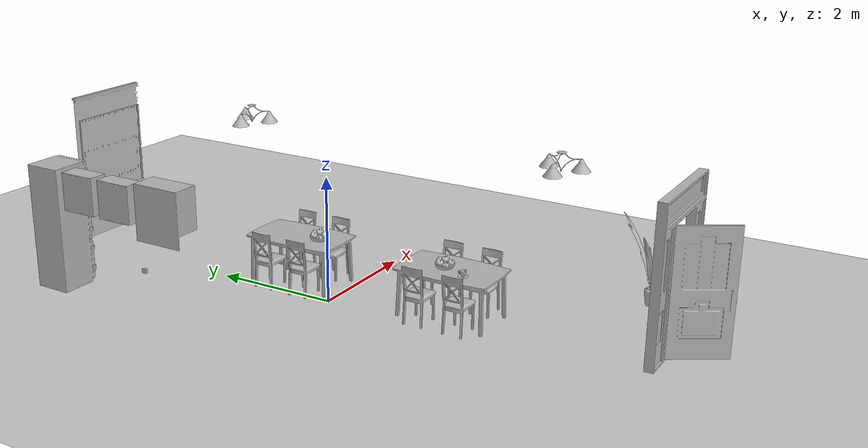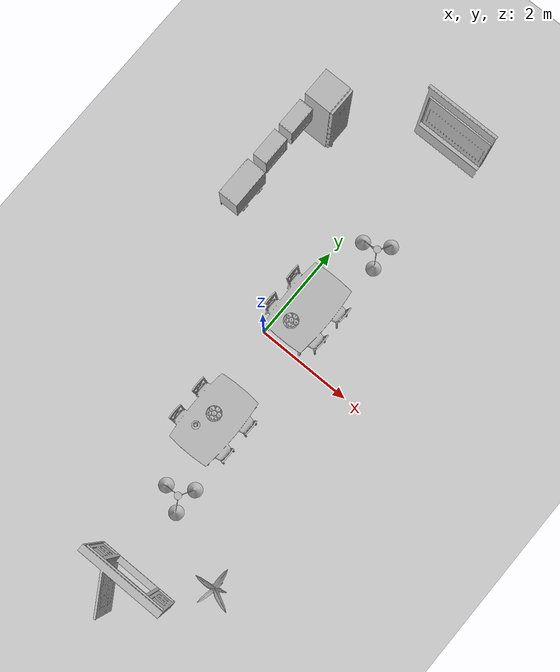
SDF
<sdf version="1.4">
 <world name="default">
  <light name="sun" type="directional">
   <pose>0 0 10 0 -0 0</pose>
   <diffuse>0.8 0.8 0.8 1</diffuse>
   <specular>0.2 0.2 0.2 1</specular>
   <attenuation>
    <range>1000</range>
    <constant>0.9</constant>
    <linear>0.01</linear>
    <quadratic>0.001</quadratic>
   </attenuation>
   <direction>-0.5 0.1 -0.9</direction>
  </light>
  <model name="ground_plane">
   <static>1</static>
   <link name="link">
    <collision name="collision">
     <geometry><plane><normal>0 0 1</normal><size>100 100</size></plane></geometry>
     <surface><friction><ode><mu>100</mu><mu2>50</mu2></ode></friction></surface>
    </collision>
    <visual name="visual">
     <cast_shadows>0</cast_shadows>
     <geometry><plane><normal>0 0 1</normal><size>100 100</size></plane></geometry>
     <material>
      <script><uri>file://media/materials/scripts/gazebo.material</uri><name>Gazebo/Grey</name></script>
     </material>
    </visual>
    <velocity_decay><linear>0</linear><angular>0</angular></velocity_decay>
   </link>
  </model>
  <physics type="ode">
   <max_step_size>0.001</max_step_size>
   <real_time_factor>1</real_time_factor>
   <real_time_update_rate>1000</real_time_update_rate>
   <gravity>0 0 -9.8</gravity>
  </physics>
  <scene><ambient>0.4 0.4 0.4 1</ambient><background>0.7 0.7 0.7 1</background><shadows>1</shadows></scene>
  <spherical_coordinates>
   <surface_model>EARTH_WGS84</surface_model>
   <latitude_deg>0</latitude_deg>
   <longitude_deg>0</longitude_deg>
   <elevation>0</elevation>
   <heading_deg>0</heading_deg>
  </spherical_coordinates>
  <model name="134_0">
   <pose>0.415405 0.789575 0.05 0 -0 0</pose>
   <static>1</static>
   <link name="link">
    <collision name="collision"><geometry><box><size>1.31043 1.55 2</size></box></geometry></collision>
    <visual name="visual"><geometry><mesh><uri>model://134/134.dae</uri></mesh></geometry></visual>
    <velocity_decay><linear>0</linear><angular>0</angular></velocity_decay>
   </link>
  </model>
  <model name="280_0">
   <pose>-1.97826 1.88526 0.75 0 -0 0</pose>
   <static>1</static>
   <link name="link">
    <collision name="collision"><geometry><box><size>0.049998 0.07 0</size></box></geometry></collision>
    <visual name="visual"><geometry><mesh><uri>model://280/280.dae</uri></mesh></geometry></visual>
    <velocity_decay><linear>0</linear><angular>0</angular></velocity_decay>
   </link>
  </model>
  <model name="134_1">
   <pose>0.415405 -1.91873 0.05 0 -0 0</pose>
   <static>1</static>
   <link name="link">
    <collision name="collision"><geometry><box><size>1.31043 1.55 2</size></box></geometry></collision>
    <visual name="visual"><geometry><mesh><uri>model://134/134.dae</uri></mesh></geometry></visual>
    <velocity_decay><linear>0</linear><angular>0</angular></velocity_decay>
   </link>
  </model>
  <model name="668_0">
   <pose>-1.8286 3.14526 1.44 0 -0 0</pose>
   <static>1</static>
   <link name="link">
    <collision name="collision"><geometry><box><size>0.320464 0.6 2</size></box></geometry></collision>
    <visual name="visual"><geometry><mesh><uri>model://668/668.dae</uri></mesh></geometry></visual>
    <velocity_decay><linear>0</linear><angular>0</angular></velocity_decay>
   </link>
  </model>
  <model name="668_1">
   <pose>-1.82938 2.42527 1.44 0 -0 0</pose>
   <static>1</static>
   <link name="link">
    <collision name="collision"><geometry><box><size>0.320464 0.6 2</size></box></geometry></collision>
    <visual name="visual"><geometry><mesh><uri>model://668/668.dae</uri></mesh></geometry></visual>
    <velocity_decay><linear>0</linear><angular>0</angular></velocity_decay>
   </link>
  </model>
  <model name="660_0">
   <pose>-1.77617 1.58526 1.24 0 -0 0</pose>
   <static>1</static>
   <link name="link">
    <collision name="collision"><geometry><box><size>0.44 0.8 2</size></box></geometry></collision>
    <visual name="visual"><geometry><mesh><uri>model://660/660.dae</uri></mesh></geometry></visual>
    <velocity_decay><linear>0</linear><angular>0</angular></velocity_decay>
   </link>
  </model>
  <model name="678_0">
   <pose>0.355406 -1.83474 0.810812 0 -0 0</pose>
   <static>1</static>
   <link name="link">
    <collision name="collision"><geometry><box><size>0.299858 0.299858 2</size></box></geometry></collision>
    <visual name="visual"><geometry><mesh><uri>model://678/678.dae</uri></mesh></geometry></visual>
    <velocity_decay><linear>0</linear><angular>0</angular></velocity_decay>
   </link>
  </model>
  <model name="678_1">
   <pose>0.343406 0.387449 0.810812 0 -0 0</pose>
   <static>1</static>
   <link name="link">
    <collision name="collision"><geometry><box><size>0.299858 0.299858 2</size></box></geometry></collision>
    <visual name="visual"><geometry><mesh><uri>model://678/678.dae</uri></mesh></geometry></visual>
    <velocity_decay><linear>0</linear><angular>0</angular></velocity_decay>
   </link>
  </model>
  <model name="149_0">
   <pose>0.223405 -2.20674 0.810801 0 -0 0</pose>
   <static>1</static>
   <link name="link">
    <collision name="collision"><geometry><box><size>0.160344 0.162279 0</size></box></geometry></collision>
    <visual name="visual"><geometry><mesh><uri>model://149/149.dae</uri></mesh></geometry></visual>
    <velocity_decay><linear>0</linear><angular>0</angular></velocity_decay>
   </link>
  </model>
  <model name="102_0">
   <pose>-1.66745 3.87726 0.05 0 -0 0</pose>
   <static>1</static>
   <link name="link">
    <collision name="collision"><geometry><box><size>0.685405 0.599801 2</size></box></geometry></collision>
    <visual name="visual"><geometry><mesh><uri>model://102/102.dae</uri></mesh></geometry></visual>
    <velocity_decay><linear>0</linear><angular>0</angular></velocity_decay>
   </link>
  </model>
  <model name="767_0">
   <pose>0.506703 4.92471 0.85 0 0 -1.5708</pose>
   <static>1</static>
   <link name="link">
    <collision name="collision"><geometry><box><size>0.1575 1.4 2</size></box></geometry></collision>
    <visual name="visual"><geometry><mesh><uri>model://767/767.dae</uri></mesh></geometry></visual>
    <velocity_decay><linear>0</linear><angular>0</angular></velocity_decay>
   </link>
  </model>
  <model name="757_0">
   <pose>1.0972 -5.02674 0.04 0 -0 1.5708</pose>
   <static>1</static>
   <link name="link">
    <collision name="collision"><geometry><box><size>0.900001 1.76 2</size></box></geometry></collision>
    <visual name="visual"><geometry><mesh><uri>model://757/757.dae</uri></mesh></geometry></visual>
    <velocity_decay><linear>0</linear><angular>0</angular></velocity_decay>
   </link>
  </model>
  <model name="631_0">
   <pose>0.871406 -3.32274 2.39 0 -0 0</pose>
   <static>1</static>
   <link name="link">
    <collision name="collision"><geometry><box><size>0.699558 0.759994 2</size></box></geometry></collision>
    <visual name="visual"><geometry><mesh><uri>model://631/631.dae</uri></mesh></geometry></visual>
    <velocity_decay><linear>0</linear><angular>0</angular></velocity_decay>
   </link>
  </model>
  <model name="631_1">
   <pose>0.787407 2.04126 2.39 0 -0 0</pose>
   <static>1</static>
   <link name="link">
    <collision name="collision"><geometry><box><size>0.699558 0.759994 2</size></box></geometry></collision>
    <visual name="visual"><geometry><mesh><uri>model://631/631.dae</uri></mesh></geometry></visual>
    <velocity_decay><linear>0</linear><angular>0</angular></velocity_decay>
   </link>
  </model>
  <model name="237_0">
   <pose>2.38282 -4.28273 0.05 0 -0 0</pose>
   <static>1</static>
   <link name="link">
    <collision name="collision"><geometry><box><size>0.839248 0.825384 2</size></box></geometry></collision>
    <visual name="visual"><geometry><mesh><uri>model://237/237.dae</uri></mesh></geometry></visual>
    <velocity_decay><linear>0</linear><angular>0</angular></velocity_decay>
   </link>
  </model>
  <model name="748_0">
   <pose>0.47044 4.89708 0.15 0 0 -1.5708</pose>
   <static>1</static>
   <link name="link">
    <collision name="collision"><geometry><box><size>0.069998 1.5 2</size></box></geometry></collision>
    <visual name="visual"><geometry><mesh><uri>model://748/748.dae</uri></mesh></geometry></visual>
    <velocity_decay><linear>0</linear><angular>0</angular></velocity_decay>
   </link>
  </model>
 </world>
</sdf>
